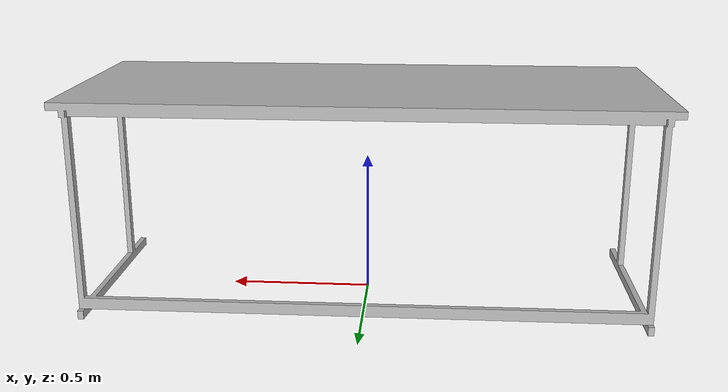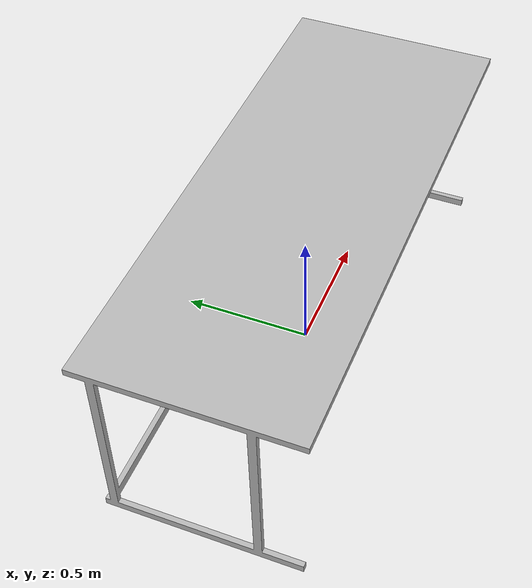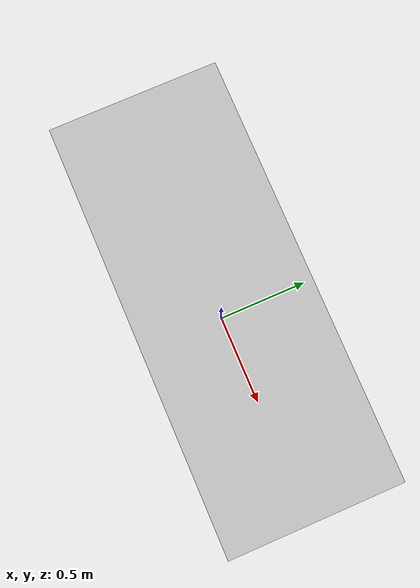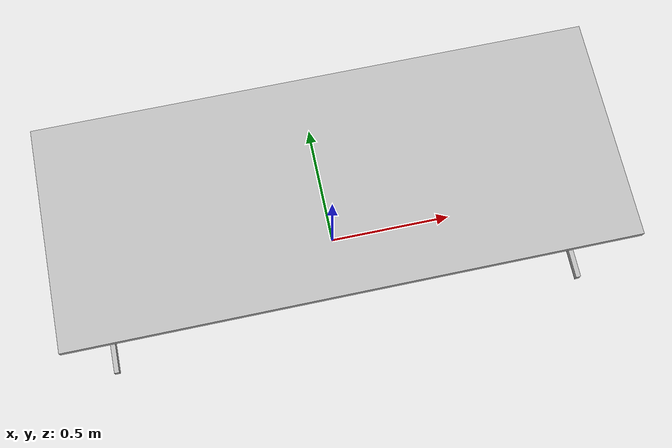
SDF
<?xml version="1.0"?>
<sdf version="1.4">
<model name="stul_200">
	<pose>0 0 0 0 0 0</pose>
	<static>true</static>
	<link name="stul_200_collision">
		<collision name="stul_200_collision">
		<geometry>
			<mesh>
				<uri>model://stul_200/meshes/model.dae</uri>

			</mesh>
		</geometry>
		</collision>
	<visual name="stul_200_mesh">
	<cast_shadows>false</cast_shadows>
		<geometry>
			<mesh>
				<uri> model://stul_200/meshes/model.dae</uri>

			</mesh>
		</geometry>
		<material>
		<script>
			<uri> model://stul_200/material/scripts</uri>
			<uri> model://stul_200/material/textures</uri>
			<name>stul_200/Diffuse</name>
		</script>
		</material>

	</visual>
</link>
</model>
</sdf>
